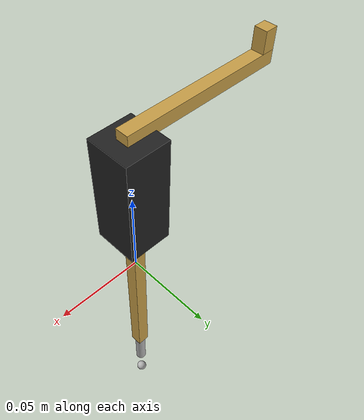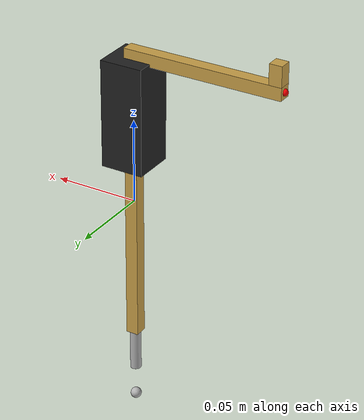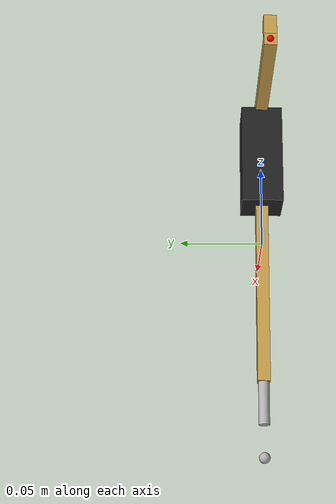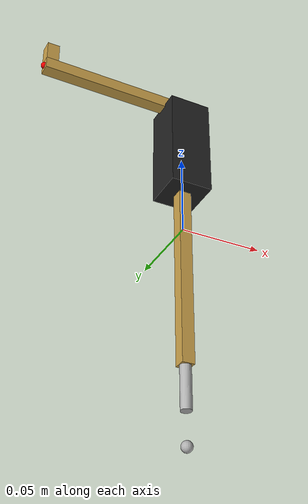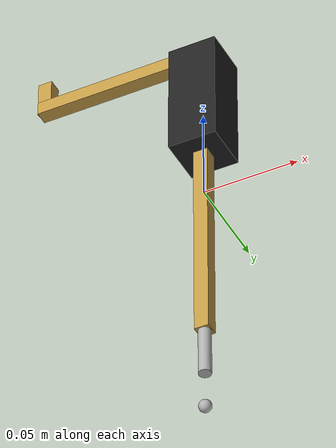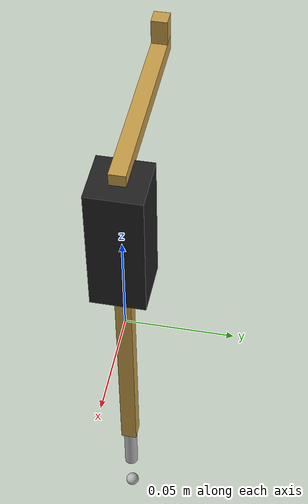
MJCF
<?xml version="1.0" encoding="utf-8"?>
<mujoco model="frame_hook_frame_fixed">
  <compiler angle="radian" coordinate="local"/>
  <option gravity="0 0 -9.81"/>
  <asset>
    <material name="brass_like" rgba="0.78 0.62 0.28 1" specular="0.5" shininess="0.2"/>
    <material name="dark_grip" rgba="0.13 0.13 0.13 1" specular="0.1" shininess="0.05"/>
    <material name="steel_like" rgba="0.7 0.7 0.7 1" specular="0.6" shininess="0.25"/>
  </asset>
  <worldbody>
    <body name="frame">
      <!-- Origin is at the center of the vertical rod (inside solid geometry) -->
      <joint name="frame_freejoint" type="free" damping="0.0005"/>
      <geom name="frame_vertical_frame" type="box" pos="0 0 0" size="0.00375 0.00375 0.08625"
            material="brass_like" density="500" solref="0.02 1" solimp="0.998 0.998 0.001"/>
      <geom name="frame_horizontal_frame" type="box" pos="-0.04375 0 0.09" size="0.0475 0.00375 0.00375"
            material="brass_like" density="500" solref="0.02 1" solimp="0.998 0.998 0.001"/>
      <geom name="frame_hook_frame" type="box" pos="-0.0875 0 0.09975" size="0.00375 0.00375 0.006"
            material="brass_like" density="500" solref="0.02 1" solimp="0.998 0.998 0.001"/>
      <geom name="frame_grip_frame" type="box" pos="0 0 0.05625" size="0.0127 0.0127 0.03175"
            rgba="0.13 0.13 0.13 1" density="500" friction="1 0.005 0.0001"
            solref="0.02 1" solimp="0.998 0.998 0.001"/>
      <geom name="frame_tip_cylinder" type="cylinder" pos="0 0 -0.09895" size="0.00325 0.0127"
            rgba="0.7 0.7 0.7 1" density="500" solref="0.02 1" solimp="0.998 0.998 0.001"/>
      <geom name="frame_tip_sphere" type="sphere" pos="0 0 -0.1307" size="0.00325"
            rgba="0.7 0.7 0.7 1" density="500" solref="0.02 1" solimp="0.998 0.998 0.001"/>
      <!-- Sites expected by ToolHang (names match robosuite: frame_*_site) -->
      <site name="frame_hang_site" pos="-0.09125 0 0.09" size="0.002" rgba="1 0 0 1" type="sphere"/>
      <site name="frame_mount_site" pos="0 0 -0.08625" size="0.002" rgba="0 1 0 1" type="sphere"/>
      <site name="frame_intersection_site" pos="0 0 0.09" size="0.002" rgba="0 0 1 1" type="sphere"/>
      <site name="frame_tip_site" pos="0 0 -0.1307" size="0.002" rgba="1 0 0 1" type="sphere"/>
      <!-- Debug: shows body origin -->
      <site name="frame_origin_site" pos="0 0 0" size="0.0015" rgba="1 1 0 1" type="sphere"/>
    </body>
  </worldbody>
</mujoco>
